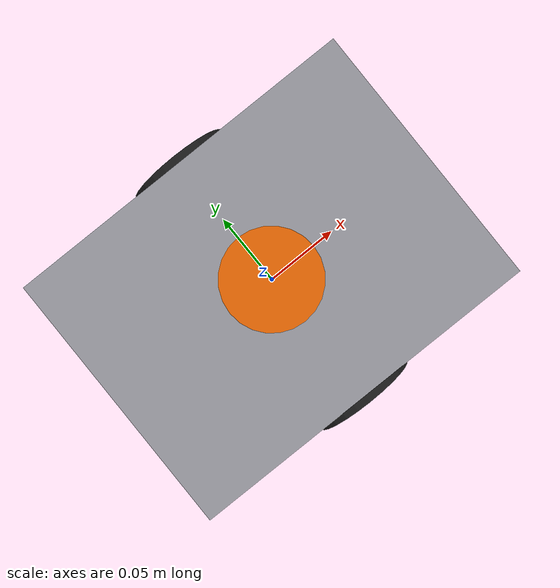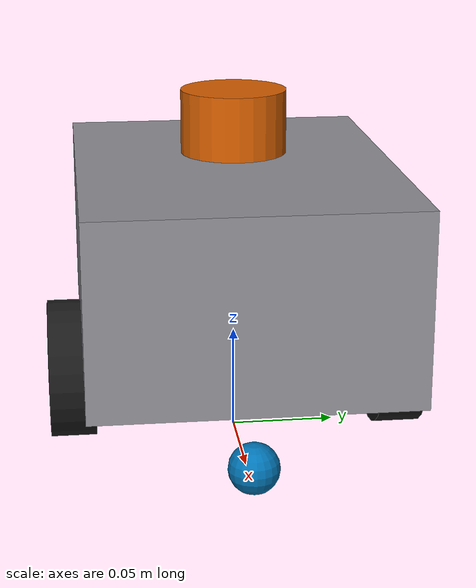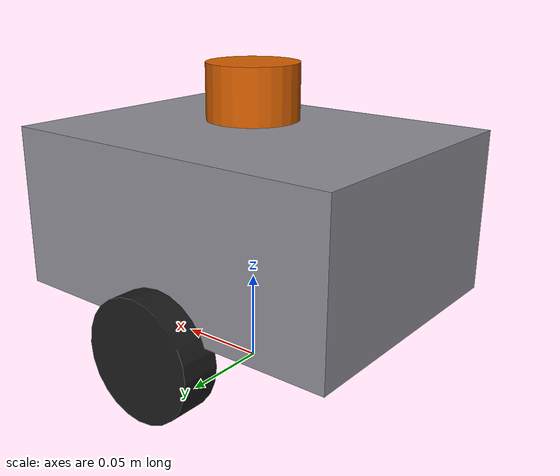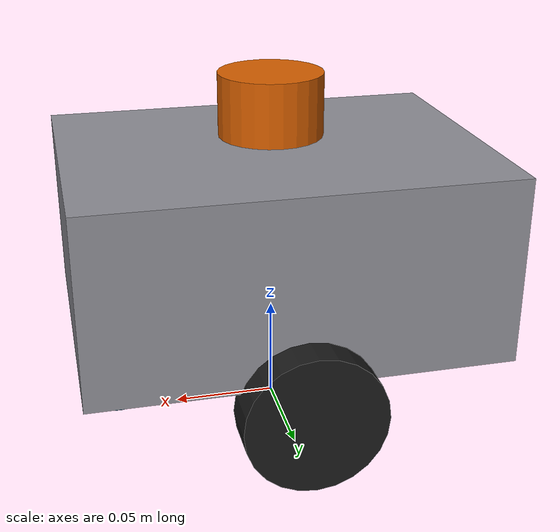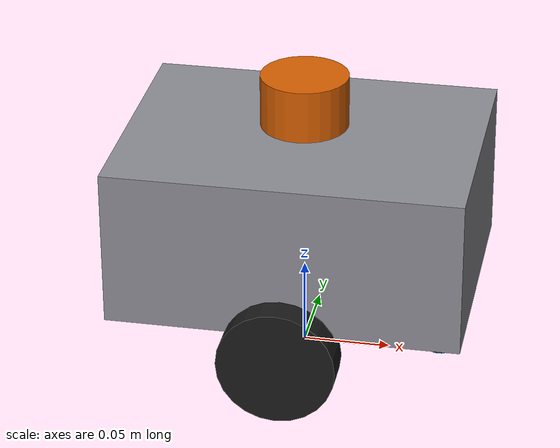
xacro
<?xml version="1.0"?>
<robot name="nano" xmlns:xacro="http://www.ros.org/wiki/xacro">
  <xacro:property name="wheel_radius" value="0.0335"/>
  <xacro:property name="wheel_separation" value="0.16"/>
  <xacro:property name="wheel_width" value="0.022"/>
  <xacro:property name="base_len" value="0.20"/>
  <xacro:property name="base_wid" value="0.15"/>
  <xacro:property name="base_height" value="0.09"/>
  <xacro:property name="base_ground_clearance" value="0.045"/>

  <material name="body_grey"><color rgba="0.55 0.55 0.58 1"/></material>
  <material name="wheel_black"><color rgba="0.1 0.1 0.1 1"/></material>

  <link name="base_footprint"/>

  <link name="base_link">
    <visual>
      <origin xyz="0 0 0" rpy="0 0 0"/>
      <geometry><box size="${base_len} ${base_wid} ${base_height}"/></geometry>
      <material name="body_grey"/>
    </visual>
    <collision>
      <origin xyz="0 0 0" rpy="0 0 0"/>
      <geometry><box size="${base_len} ${base_wid} ${base_height}"/></geometry>
    </collision>
    <inertial>
      <mass value="0.6"/>
      <inertia ixx="0.002" ixy="0" ixz="0" iyy="0.003" iyz="0" izz="0.003"/>
    </inertial>
  </link>

  <joint name="base_joint" type="fixed">
    <parent link="base_footprint"/>
    <child link="base_link"/>
    <origin xyz="0 0 ${base_ground_clearance + base_height/2}" rpy="0 0 0"/>
  </joint>

  <xacro:macro name="wheel" params="prefix y_sign">
    <link name="${prefix}_wheel_link">
      <visual>
        <origin xyz="0 0 0" rpy="${pi/2} 0 0"/>
        <geometry><cylinder radius="${wheel_radius}" length="${wheel_width}"/></geometry>
        <material name="wheel_black"/>
      </visual>
      <collision>
        <origin xyz="0 0 0" rpy="${pi/2} 0 0"/>
        <geometry><cylinder radius="${wheel_radius}" length="${wheel_width}"/></geometry>
      </collision>
      <inertial>
        <mass value="0.05"/>
        <inertia ixx="0.00002" ixy="0" ixz="0" iyy="0.00002" iyz="0" izz="0.00003"/>
      </inertial>
    </link>
    <joint name="${prefix}_wheel_joint" type="continuous">
      <parent link="base_link"/>
      <child link="${prefix}_wheel_link"/>
      <origin xyz="0 ${y_sign * wheel_separation/2} ${-base_ground_clearance - base_height/2 + wheel_radius}" rpy="0 0 0"/>
      <axis xyz="0 1 0"/>
    </joint>
  </xacro:macro>
  <xacro:wheel prefix="left" y_sign="1"/>
  <xacro:wheel prefix="right" y_sign="-1"/>

  <!-- Frictionless caster so the robot doesn't tip on 3 contact points -->
  <link name="caster_link">
    <visual><geometry><sphere radius="0.012"/></geometry></visual>
    <collision><geometry><sphere radius="0.012"/></geometry></collision>
    <inertial><mass value="0.01"/><inertia ixx="1e-6" ixy="0" ixz="0" iyy="1e-6" iyz="0" izz="1e-6"/></inertial>
  </link>
  <joint name="caster_joint" type="fixed">
    <parent link="base_link"/>
    <child link="caster_link"/>
    <origin xyz="${base_len/2 - 0.02} 0 ${-base_ground_clearance - base_height/2 + 0.012}" rpy="0 0 0"/>
  </joint>

  <link name="laser_link">
    <visual><geometry><cylinder radius="0.025" length="0.03"/></geometry></visual>
  </link>
  <joint name="laser_joint" type="fixed">
    <parent link="base_link"/>
    <child link="laser_link"/>
    <origin xyz="0 0 ${base_height/2 + 0.02}" rpy="0 0 0"/>
  </joint>

  <link name="imu_link"/>
  <joint name="imu_joint" type="fixed">
    <parent link="base_link"/>
    <child link="imu_link"/>
    <origin xyz="0 0 0" rpy="0 0 0"/>
  </joint>

  <!-- ============================ Gazebo Sim ============================ -->
  <gazebo>
    <plugin filename="gz-sim-diff-drive-system" name="gz::sim::systems::DiffDrive">
      <left_joint>left_wheel_joint</left_joint>
      <right_joint>right_wheel_joint</right_joint>
      <wheel_separation>${wheel_separation}</wheel_separation>
      <wheel_radius>${wheel_radius}</wheel_radius>
      <!-- Absolute (leading "/") topic names throughout so they don't get namespaced
           under the spawned model name; keeps gz_bridge.yaml's topic list predictable. -->
      <topic>/cmd_vel</topic>
      <!-- deliberately NOT bridged: wheel_odometry (fed via sim_bridge_node's synthetic
           /wheel_ticks) is the real odometry source, matching the robot. -->
      <odom_topic>/gz_odom_unused</odom_topic>
      <tf_topic>/gz_tf_unused</tf_topic>
    </plugin>
    <plugin filename="gz-sim-joint-state-publisher-system"
            name="gz::sim::systems::JointStatePublisher">
      <joint_name>left_wheel_joint</joint_name>
      <joint_name>right_wheel_joint</joint_name>
      <topic>/joint_states_gz</topic>
    </plugin>
  </gazebo>

  <gazebo reference="laser_link">
    <sensor name="lidar" type="gpu_lidar">
      <topic>/scan</topic>
      <update_rate>10</update_rate>
      <always_on>true</always_on>
      <visualize>false</visualize>
      <lidar>
        <scan>
          <horizontal>
            <samples>360</samples>
            <min_angle>0.0</min_angle>
            <max_angle>6.26573</max_angle>
          </horizontal>
        </scan>
        <range>
          <min>0.12</min>
          <max>6.0</max>
          <resolution>0.01</resolution>
        </range>
      </lidar>
    </sensor>
  </gazebo>

  <gazebo reference="imu_link">
    <sensor name="imu" type="imu">
      <topic>/imu</topic>
      <update_rate>100</update_rate>
      <always_on>true</always_on>
    </sensor>
  </gazebo>

  <gazebo>
    <plugin filename="gz-sim-sensors-system" name="gz::sim::systems::Sensors">
      <render_engine>ogre2</render_engine>
    </plugin>
    <plugin filename="gz-sim-imu-system" name="gz::sim::systems::Imu"/>
  </gazebo>
</robot>
